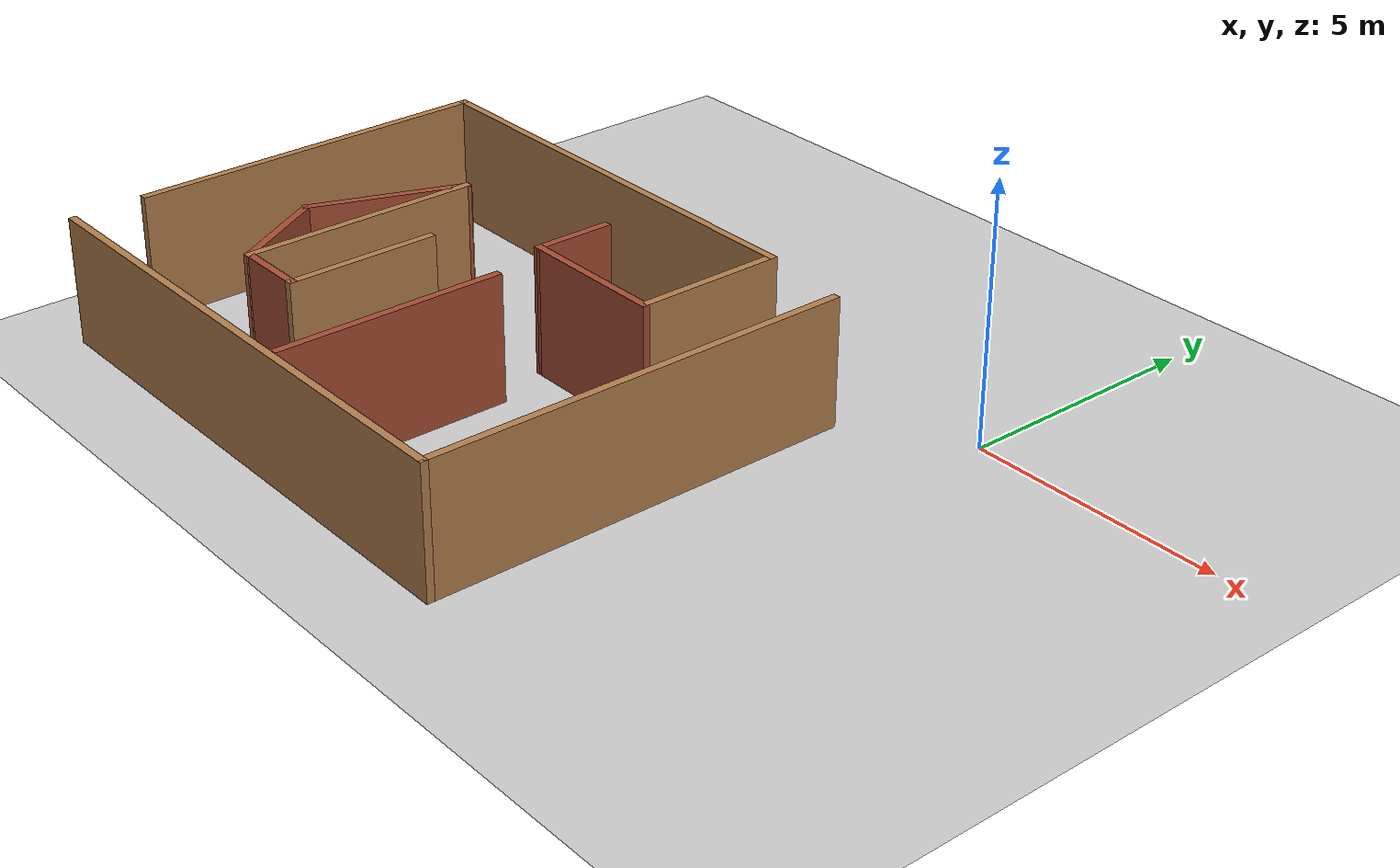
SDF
<sdf version="1.7">
 <world name="default">
  <light name="sun" type="directional">
   <pose>0 0 10 0 -0 0</pose>
   <diffuse>0.8 0.8 0.8 1</diffuse>
   <specular>0.2 0.2 0.2 1</specular>
   <attenuation>
    <range>1000</range>
    <constant>0.9</constant>
    <linear>0.01</linear>
    <quadratic>0.001</quadratic>
   </attenuation>
   <direction>-0.5 0.1 -0.9</direction>
   <spot><inner_angle>0</inner_angle><outer_angle>0</outer_angle><falloff>0</falloff></spot>
  </light>
  <model name="ground_plane">
   <static>1</static>
   <link name="link">
    <collision name="collision">
     <geometry><plane><normal>0 0 1</normal><size>100 100</size></plane></geometry>
     <surface>
      <contact><collide_bitmask>65535</collide_bitmask></contact>
      <friction><ode><mu>100</mu><mu2>50</mu2></ode></friction>
     </surface>
    </collision>
    <visual name="visual">
     <cast_shadows>0</cast_shadows>
     <geometry><plane><normal>0 0 1</normal><size>100 100</size></plane></geometry>
     <material>
      <script><uri>file://media/materials/scripts/gazebo.material</uri><name>Gazebo/Grey</name></script>
     </material>
    </visual>
   </link>
  </model>
  <gravity>0 0 -9.8</gravity>
  <magnetic_field>6e-06 2.3e-05 -4.2e-05</magnetic_field>
  <atmosphere type="adiabatic"/>
  <physics type="ode">
   <max_step_size>0.001</max_step_size>
   <real_time_factor>1</real_time_factor>
   <real_time_update_rate>1000</real_time_update_rate>
  </physics>
  <scene><ambient>0.4 0.4 0.4 1</ambient><background>0.7 0.7 0.7 1</background><shadows>1</shadows></scene>
  <spherical_coordinates>
   <surface_model>EARTH_WGS84</surface_model>
   <latitude_deg>0</latitude_deg>
   <longitude_deg>0</longitude_deg>
   <elevation>0</elevation>
   <heading_deg>0</heading_deg>
  </spherical_coordinates>
  <model name="Untitled">
   <pose>-6.57449 -4.94128 0 0 -0 0</pose>
   <link name="Wall_13">
    <collision name="Wall_13_Collision">
     <geometry><box><size>4.5 0.15 2.5</size></box></geometry>
     <pose>0 0 1.25 0 -0 0</pose>
    </collision>
    <visual name="Wall_13_Visual">
     <pose>0 0 1.25 0 -0 0</pose>
     <geometry><box><size>4.5 0.15 2.5</size></box></geometry>
     <material>
      <script><uri>file://media/materials/scripts/gazebo.material</uri><name>Gazebo/Bricks</name></script>
      <ambient>1 1 1 1</ambient>
     </material>
     <meta><layer>0</layer></meta>
    </visual>
    <pose>0.117873 -2.53297 0 0 -0 -1.5708</pose>
   </link>
   <link name="Wall_15">
    <collision name="Wall_15_Collision">
     <geometry><box><size>4.75 0.15 2.5</size></box></geometry>
     <pose>0 0 1.25 0 -0 0</pose>
    </collision>
    <visual name="Wall_15_Visual">
     <pose>0 0 1.25 0 -0 0</pose>
     <geometry><box><size>4.75 0.15 2.5</size></box></geometry>
     <material>
      <script><uri>file://media/materials/scripts/gazebo.material</uri><name>Gazebo/Wood</name></script>
      <ambient>1 1 1 1</ambient>
     </material>
     <meta><layer>0</layer></meta>
    </visual>
    <pose>-3.20087 -0.908092 0 0 -0 -1.5708</pose>
   </link>
   <link name="Wall_16">
    <collision name="Wall_16_Collision">
     <geometry><box><size>2.25 0.15 2.5</size></box></geometry>
     <pose>0 0 1.25 0 -0 0</pose>
    </collision>
    <visual name="Wall_16_Visual">
     <pose>0 0 1.25 0 -0 0</pose>
     <geometry><box><size>2.25 0.15 2.5</size></box></geometry>
     <material>
      <script><uri>file://media/materials/scripts/gazebo.material</uri><name>Gazebo/Bricks</name></script>
      <ambient>1 1 1 1</ambient>
     </material>
     <meta><layer>0</layer></meta>
    </visual>
    <pose>-3.72587 -2.29877 0 0 -0 2.0944</pose>
   </link>
   <link name="Wall_17">
    <collision name="Wall_17_Collision">
     <geometry><box><size>3.12294 0.15 2.5</size></box></geometry>
     <pose>0 0 1.25 0 -0 0</pose>
    </collision>
    <visual name="Wall_17_Visual">
     <pose>0 0 1.25 0 -0 0</pose>
     <geometry><box><size>3.12294 0.15 2.5</size></box></geometry>
     <material>
      <script><uri>file://media/materials/scripts/gazebo.material</uri><name>Gazebo/Bricks</name></script>
      <ambient>1 1 1 1</ambient>
     </material>
     <meta><layer>0</layer></meta>
    </visual>
    <pose>-3.72587 0.001234 0 0 -0 1.20982</pose>
   </link>
   <link name="Wall_19">
    <collision name="Wall_19_Collision">
     <geometry><box><size>1.59215 0.15 2.5</size></box></geometry>
     <pose>0 0 1.25 0 -0 0</pose>
    </collision>
    <visual name="Wall_19_Visual">
     <pose>0 0 1.25 0 -0 0</pose>
     <geometry><box><size>1.59215 0.15 2.5</size></box></geometry>
     <material>
      <script><uri>file://media/materials/scripts/gazebo.material</uri><name>Gazebo/Bricks</name></script>
      <ambient>1 1 1 1</ambient>
     </material>
     <meta><layer>0</layer></meta>
    </visual>
    <pose>-0.246832 1.57595 0 0 -0 -1.57449</pose>
   </link>
   <link name="Wall_21">
    <collision name="Wall_21_Collision">
     <geometry><box><size>1.5 0.15 2.5</size></box></geometry>
     <pose>0 0 1.25 0 -0 0</pose>
    </collision>
    <visual name="Wall_21_Visual">
     <pose>0 0 1.25 0 -0 0</pose>
     <geometry><box><size>1.5 0.15 2.5</size></box></geometry>
     <material>
      <script><uri>file://media/materials/scripts/gazebo.material</uri><name>Gazebo/Bricks</name></script>
      <ambient>1 1 1 1</ambient>
     </material>
     <meta><layer>0</layer></meta>
    </visual>
    <pose>-2.52587 -3.20809 0 0 -0 0</pose>
   </link>
   <link name="Wall_22">
    <collision name="Wall_22_Collision">
     <geometry><box><size>3 0.15 2.5</size></box></geometry>
     <pose>0 0 1.25 0 -0 0</pose>
    </collision>
    <visual name="Wall_22_Visual">
     <pose>0 0 1.25 0 -0 0</pose>
     <geometry><box><size>3 0.15 2.5</size></box></geometry>
     <material>
      <script><uri>file://media/materials/scripts/gazebo.material</uri><name>Gazebo/Wood</name></script>
      <ambient>1 1 1 1</ambient>
     </material>
     <meta><layer>0</layer></meta>
    </visual>
    <pose>-1.85087 -1.78309 0 0 -0 1.5708</pose>
   </link>
   <link name="Wall_3">
    <collision name="Wall_3_Collision">
     <geometry><box><size>8.5 0.15 2.5</size></box></geometry>
     <pose>0 0 1.25 0 -0 0</pose>
    </collision>
    <visual name="Wall_3_Visual">
     <pose>0 0 1.25 0 -0 0</pose>
     <geometry><box><size>8.5 0.15 2.5</size></box></geometry>
     <material>
      <script><uri>file://media/materials/scripts/gazebo.material</uri><name>Gazebo/Wood</name></script>
      <ambient>1 1 1 1</ambient>
     </material>
     <meta><layer>0</layer></meta>
    </visual>
    <pose>4.40206 -0.691281 0 0 -0 -1.5708</pose>
   </link>
   <link name="Wall_4">
    <collision name="Wall_4_Collision">
     <geometry><box><size>11 0.15 2.5</size></box></geometry>
     <pose>0 0 1.25 0 -0 0</pose>
    </collision>
    <visual name="Wall_4_Visual">
     <pose>0 0 1.25 0 -0 0</pose>
     <geometry><box><size>11 0.15 2.5</size></box></geometry>
     <material>
      <script><uri>file://media/materials/scripts/gazebo.material</uri><name>Gazebo/Wood</name></script>
      <ambient>1 1 1 1</ambient>
     </material>
     <meta><layer>0</layer></meta>
    </visual>
    <pose>-1.02294 -4.86628 0 0 -0 3.14159</pose>
   </link>
   <link name="Wall_6">
    <collision name="Wall_6_Collision">
     <geometry><box><size>7.25 0.15 2.5</size></box></geometry>
     <pose>0 0 1.25 0 -0 0</pose>
    </collision>
    <visual name="Wall_6_Visual">
     <pose>0 0 1.25 0 -0 0</pose>
     <geometry><box><size>7.25 0.15 2.5</size></box></geometry>
     <material>
      <script><uri>file://media/materials/scripts/gazebo.material</uri><name>Gazebo/Wood</name></script>
      <ambient>1 1 1 1</ambient>
     </material>
     <meta><layer>0</layer></meta>
    </visual>
    <pose>-6.49949 0.154877 0 0 -0 1.5708</pose>
   </link>
   <link name="Wall_7">
    <collision name="Wall_7_Collision">
     <geometry><box><size>9.25 0.15 2.5</size></box></geometry>
     <pose>0 0 1.25 0 -0 0</pose>
    </collision>
    <visual name="Wall_7_Visual">
     <pose>0 0 1.25 0 -0 0</pose>
     <geometry><box><size>9.25 0.15 2.5</size></box></geometry>
     <material>
      <script><uri>file://media/materials/scripts/gazebo.material</uri><name>Gazebo/Wood</name></script>
      <ambient>1 1 1 1</ambient>
     </material>
     <meta><layer>0</layer></meta>
    </visual>
    <pose>-1.94949 3.70488 0 0 -0 0</pose>
   </link>
   <link name="Wall_8">
    <collision name="Wall_8_Collision">
     <geometry><box><size>3 0.15 2.5</size></box></geometry>
     <pose>0 0 1.25 0 -0 0</pose>
    </collision>
    <visual name="Wall_8_Visual">
     <pose>0 0 1.25 0 -0 0</pose>
     <geometry><box><size>3 0.15 2.5</size></box></geometry>
     <material>
      <script><uri>file://media/materials/scripts/gazebo.material</uri><name>Gazebo/Wood</name></script>
      <ambient>1 1 1 1</ambient>
     </material>
     <meta><layer>0</layer></meta>
    </visual>
    <pose>2.60051 2.27988 0 0 -0 -1.5708</pose>
   </link>
   <link name="Wall_9">
    <collision name="Wall_9_Collision">
     <geometry><box><size>3 0.15 2.5</size></box></geometry>
     <pose>0 0 1.25 0 -0 0</pose>
    </collision>
    <visual name="Wall_9_Visual">
     <pose>0 0 1.25 0 -0 0</pose>
     <geometry><box><size>3 0.15 2.5</size></box></geometry>
     <material>
      <script><uri>file://media/materials/scripts/gazebo.material</uri><name>Gazebo/Bricks</name></script>
      <ambient>1 1 1 1</ambient>
     </material>
     <meta><layer>0</layer></meta>
    </visual>
    <pose>1.17551 0.854877 0 0 -0 3.14159</pose>
   </link>
   <static>1</static>
  </model>
 </world>
</sdf>
